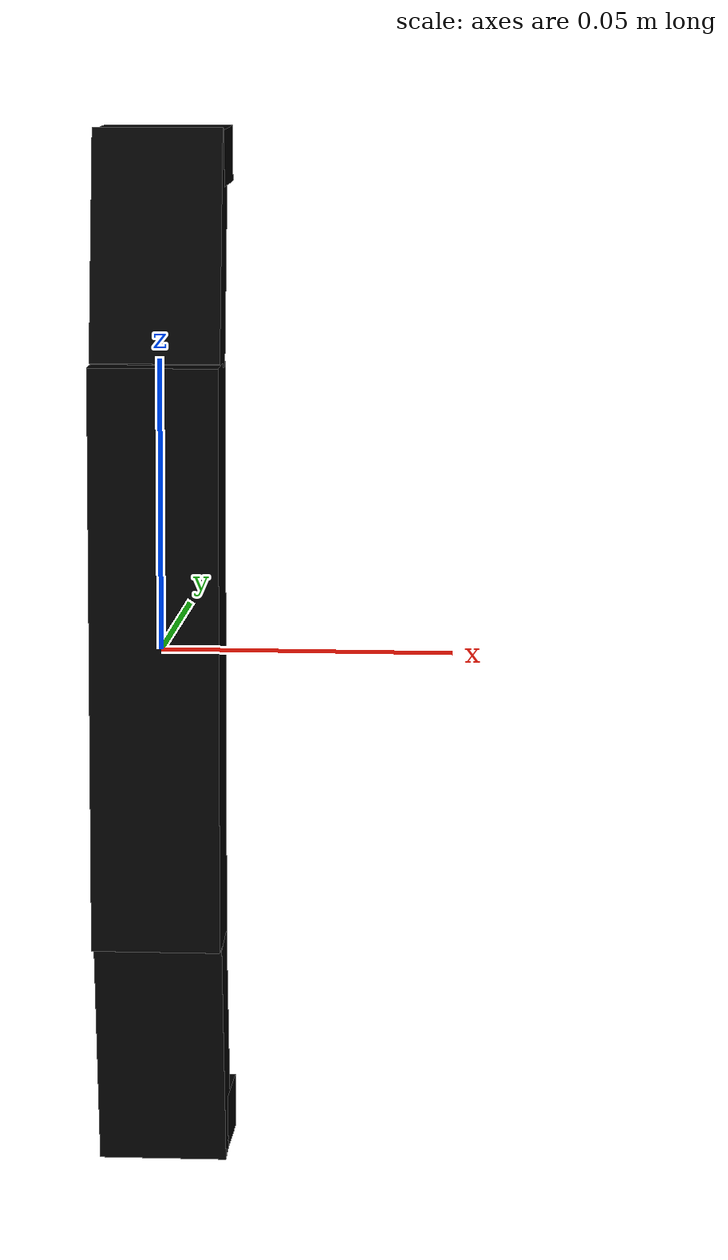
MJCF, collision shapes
<?xml version="1.0" ?>
<mujoco model="model">
    <compiler angle="radian"/>
    <asset>
        <mesh file="visuals/CabinetHandle034.obj" name="mesh"/>
        <material name="mat" rgba="0.550000011920929 0.550000011920929 0.550000011920929 1.0" shininess="0.10000002384185791" specular="0.33333333333333337"/>
    </asset>
    <default>
        <default class="visual">
            <geom conaffinity="0" contype="0" group="1" type="mesh"/>
        </default>
        <default class="collision">
            <geom group="0" rgba="0 0 0 0"/>
        </default>
        <default class="spawn">
            <geom group="0" rgba="0 0 0 0" contype="0" conaffinity="0"/>
            <site group="0" rgba="0 0 0 0"/>
        </default>
    </default>
    <worldbody>
        <body>
            <body name="object">
                <geom mesh="mesh" type="mesh" solimp="0.998 0.998 0.001" solref="0.001 1" density="100" friction="0.95 0.3 0.1" class="visual" material="mat"/>
                <geom class="collision" type="box" pos="0.00012694075121544302 -0.0081240339204669 0.0" size="0.01103002019226551 0.006587193347513676 0.04999999701976776" quat="1.0 0.0 0.0 0.0"/>
                <geom class="collision" type="box" pos="0.00012694075121544302 0.0061347223818302155 0.08415713161230087" size="0.01103002019226551 0.008244373835623264 0.004781731870025396" quat="1.0 0.0 0.0 0.0" name="handle_connector"/>
                <geom class="collision" type="box" pos="0.00012694075121544302 0.00607963465154171 -0.08401042968034744" size="0.01103002019226551 0.008244373835623264 0.004781731870025396" quat="1.0 0.0 0.0 0.0"/>
                <geom class="collision" type="box" pos="0.00012694075121544302 -0.0032090051099658012 -0.0691131055355072" size="0.01103002019226551 0.0046836300753057 0.01982794515788555" quat="0.9961947202682495 0.08715573698282242 0.0 0.0"/>
                <geom class="collision" type="box" pos="0.00012694075121544302 -0.0032720831222832203 0.06913015246391296" size="0.01103002019226551 0.0046836300753057 0.01982794515788555" quat="0.9961947202682495 -0.08715572953224182 -0.0 0.0"/>
            </body>
        </body>
    </worldbody>
    <actuator/>
</mujoco>
